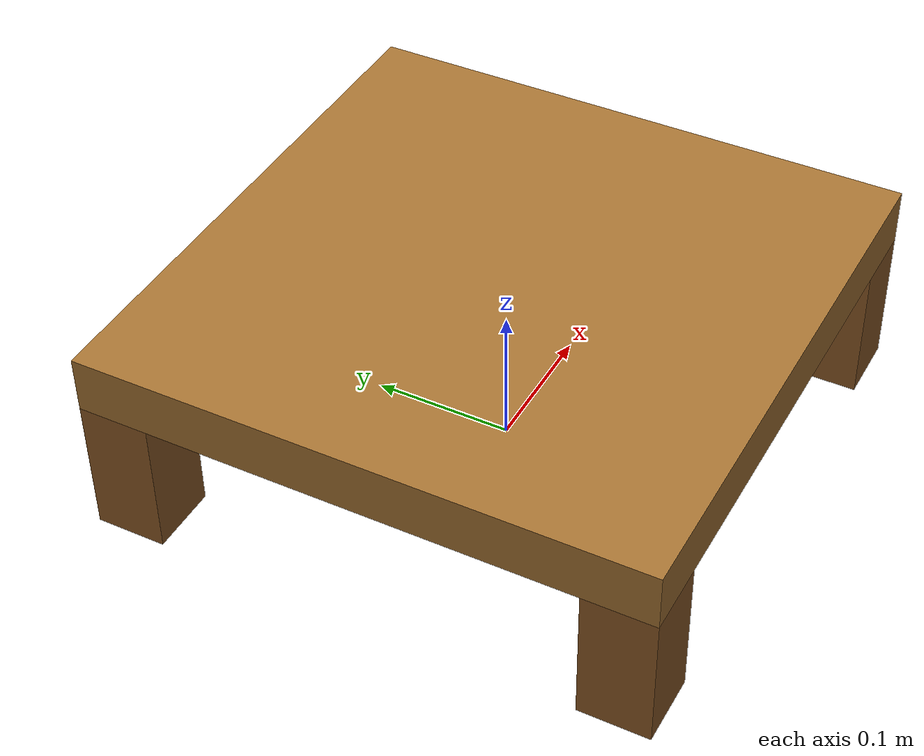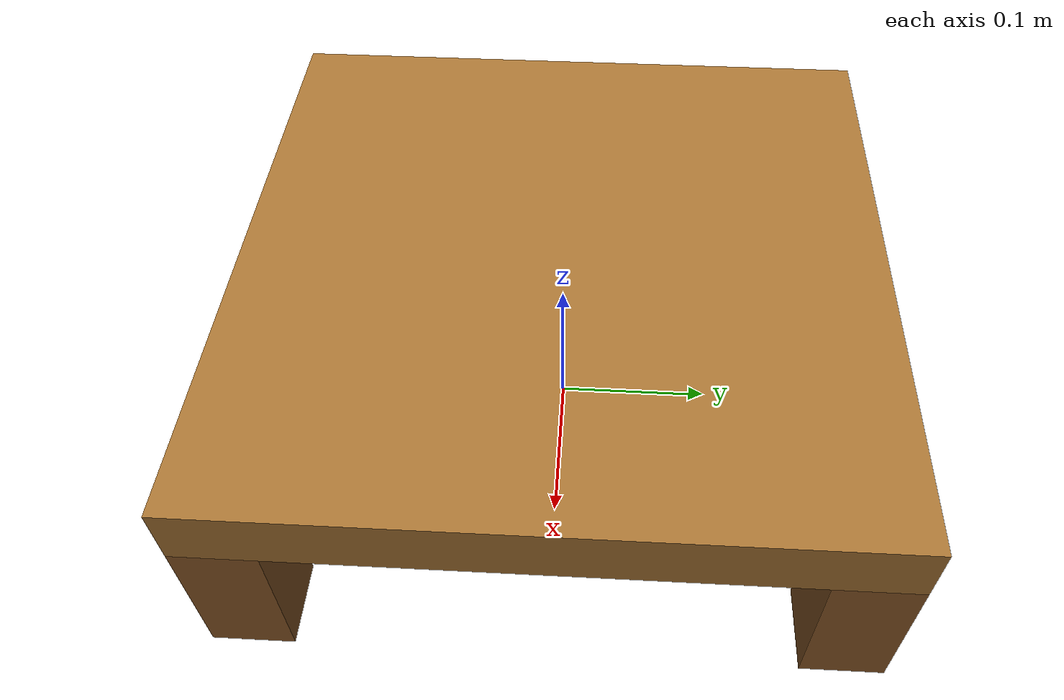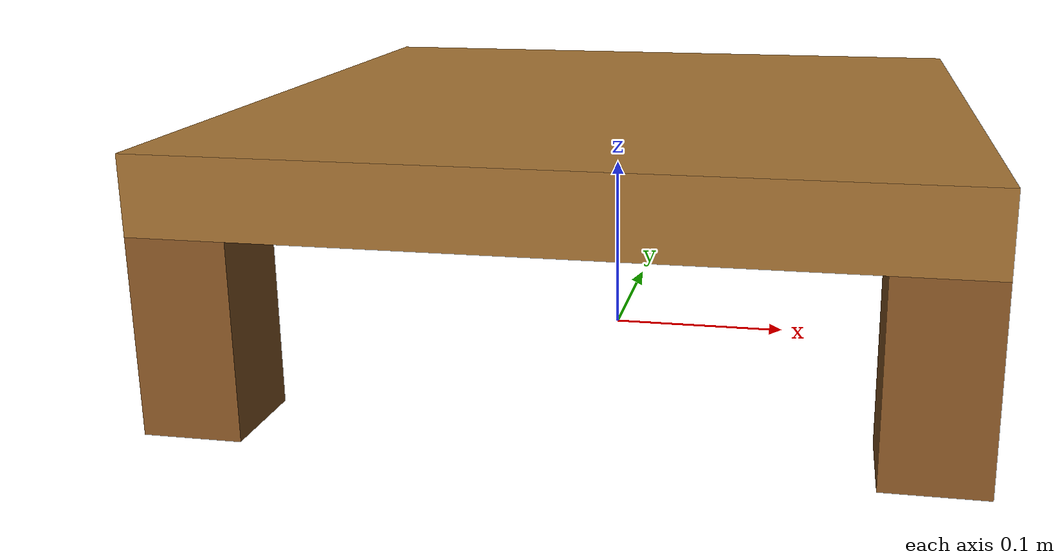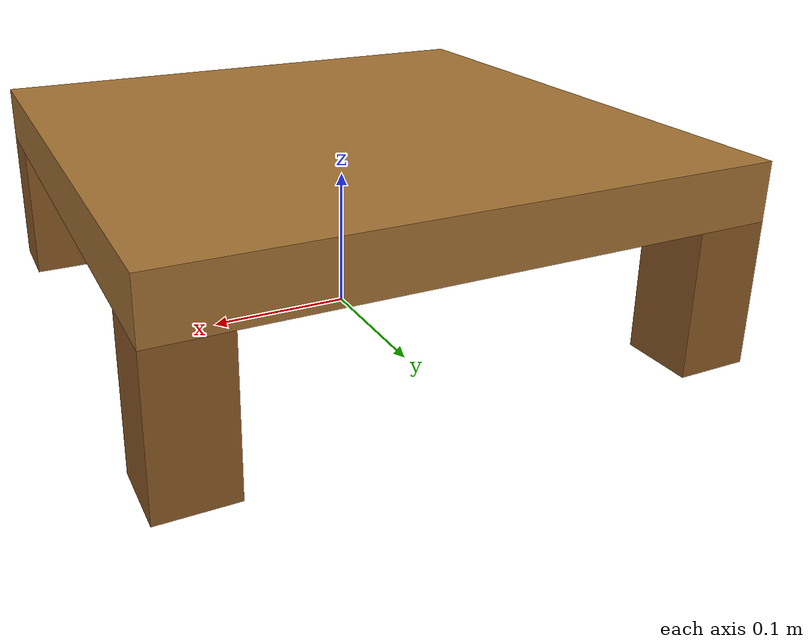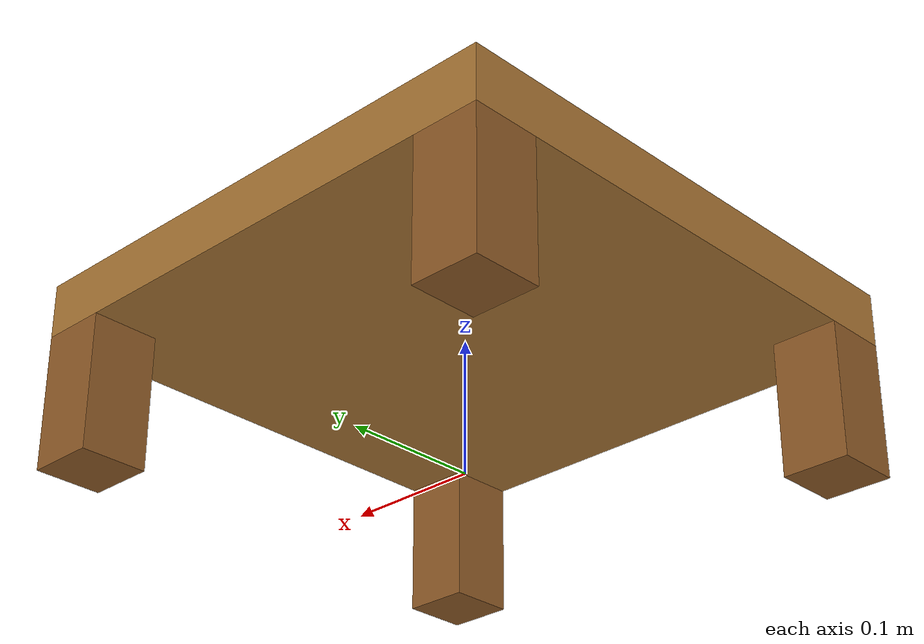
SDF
<?xml version="1.0"?>
<sdf version="1.8">
  <model name="sim_pallet">
    <static>false</static>
    <link name="pallet_body">
      <inertial>
        <pose>0 0 0.10 0 0 0</pose>
        <mass>2.0</mass>
        <inertia>
          <ixx>0.030</ixx><ixy>0</ixy><ixz>0</ixz>
          <iyy>0.030</iyy><iyz>0</iyz>
          <izz>0.053</izz>
        </inertia>
      </inertial>

      <!-- deck -->
      <collision name="deck_collision">
        <pose>0 0 0.12 0 0 0</pose>
        <geometry><box><size>0.40 0.40 0.04</size></box></geometry>
        <surface>
          <friction><ode><mu>0.9</mu><mu2>0.9</mu2></ode></friction>
          <!-- soft contact: damp deck-on-fork-plate bounce so static
               friction holds during carry (stiff default chatters) -->
          <contact><ode><kp>100000</kp><kd>1000</kd></ode></contact>
        </surface>
      </collision>
      <visual name="deck_visual">
        <pose>0 0 0.12 0 0 0</pose>
        <geometry><box><size>0.40 0.40 0.04</size></box></geometry>
        <material>
          <ambient>0.65 0.45 0.20 1</ambient>
          <diffuse>0.65 0.45 0.20 1</diffuse>
        </material>
      </visual>

      <!-- legs (±0.175, ±0.175), bottom flush with z=0 -->
      <collision name="leg_pp_collision">
        <pose>0.175 0.175 0.05 0 0 0</pose>
        <geometry><box><size>0.05 0.05 0.10</size></box></geometry>
        <surface>
          <friction><ode><mu>0.9</mu><mu2>0.9</mu2></ode></friction>
        </surface>
      </collision>
      <visual name="leg_pp_visual">
        <pose>0.175 0.175 0.05 0 0 0</pose>
        <geometry><box><size>0.05 0.05 0.10</size></box></geometry>
        <material>
          <ambient>0.55 0.35 0.15 1</ambient>
          <diffuse>0.55 0.35 0.15 1</diffuse>
        </material>
      </visual>

      <collision name="leg_pn_collision">
        <pose>0.175 -0.175 0.05 0 0 0</pose>
        <geometry><box><size>0.05 0.05 0.10</size></box></geometry>
        <surface>
          <friction><ode><mu>0.9</mu><mu2>0.9</mu2></ode></friction>
        </surface>
      </collision>
      <visual name="leg_pn_visual">
        <pose>0.175 -0.175 0.05 0 0 0</pose>
        <geometry><box><size>0.05 0.05 0.10</size></box></geometry>
        <material>
          <ambient>0.55 0.35 0.15 1</ambient>
          <diffuse>0.55 0.35 0.15 1</diffuse>
        </material>
      </visual>

      <collision name="leg_np_collision">
        <pose>-0.175 0.175 0.05 0 0 0</pose>
        <geometry><box><size>0.05 0.05 0.10</size></box></geometry>
        <surface>
          <friction><ode><mu>0.9</mu><mu2>0.9</mu2></ode></friction>
        </surface>
      </collision>
      <visual name="leg_np_visual">
        <pose>-0.175 0.175 0.05 0 0 0</pose>
        <geometry><box><size>0.05 0.05 0.10</size></box></geometry>
        <material>
          <ambient>0.55 0.35 0.15 1</ambient>
          <diffuse>0.55 0.35 0.15 1</diffuse>
        </material>
      </visual>

      <collision name="leg_nn_collision">
        <pose>-0.175 -0.175 0.05 0 0 0</pose>
        <geometry><box><size>0.05 0.05 0.10</size></box></geometry>
        <surface>
          <friction><ode><mu>0.9</mu><mu2>0.9</mu2></ode></friction>
        </surface>
      </collision>
      <visual name="leg_nn_visual">
        <pose>-0.175 -0.175 0.05 0 0 0</pose>
        <geometry><box><size>0.05 0.05 0.10</size></box></geometry>
        <material>
          <ambient>0.55 0.35 0.15 1</ambient>
          <diffuse>0.55 0.35 0.15 1</diffuse>
        </material>
      </visual>
    </link>
  </model>
</sdf>
